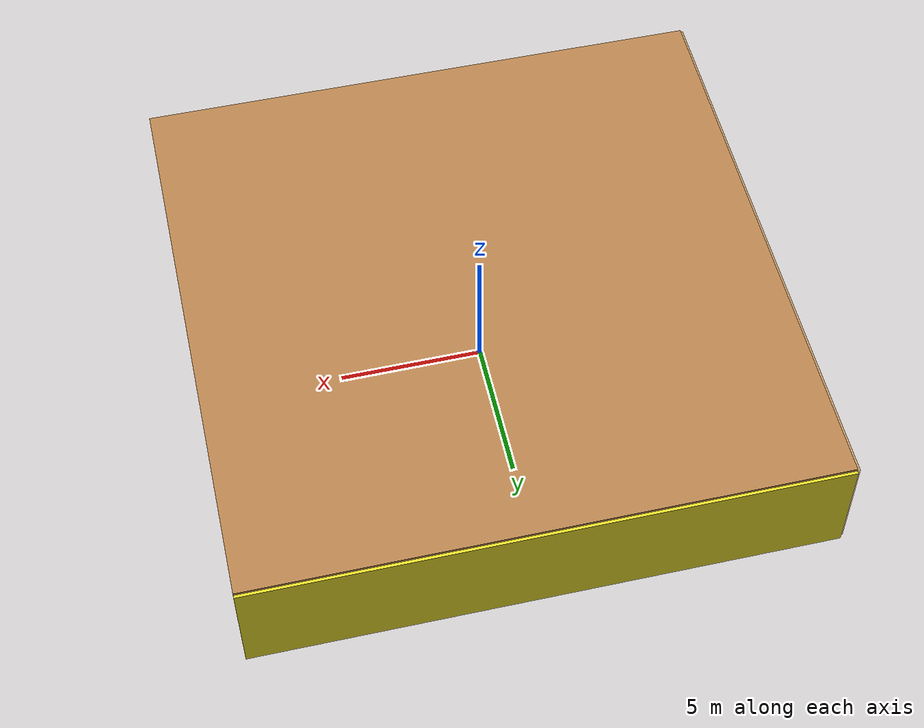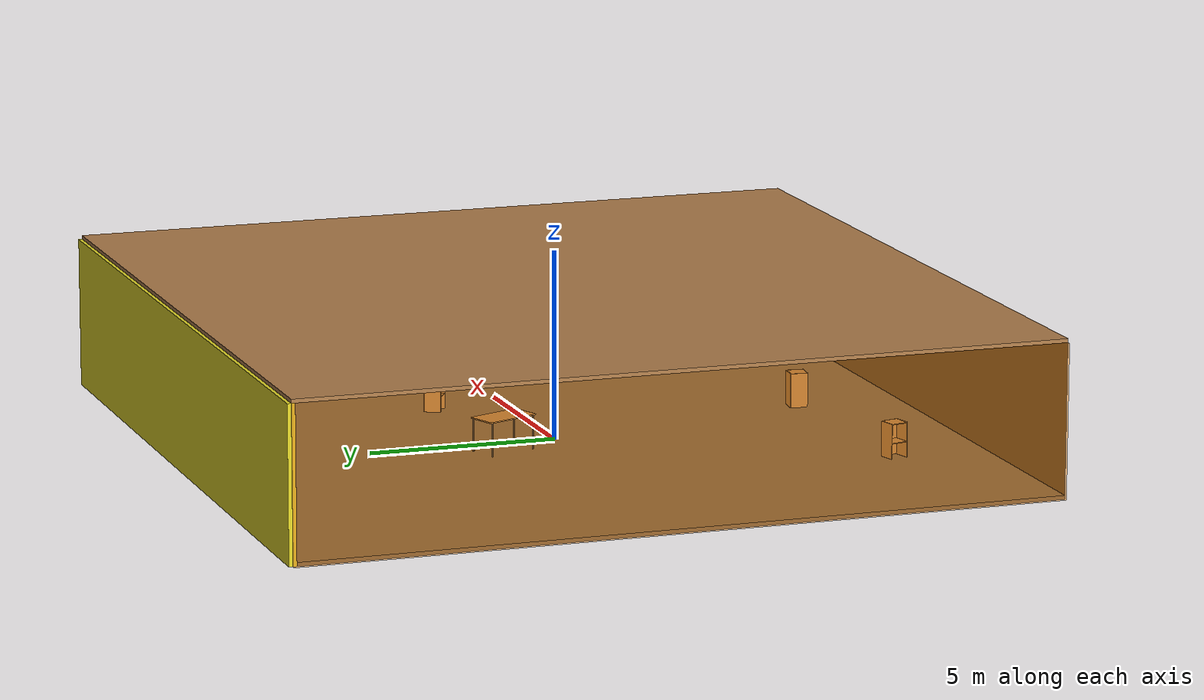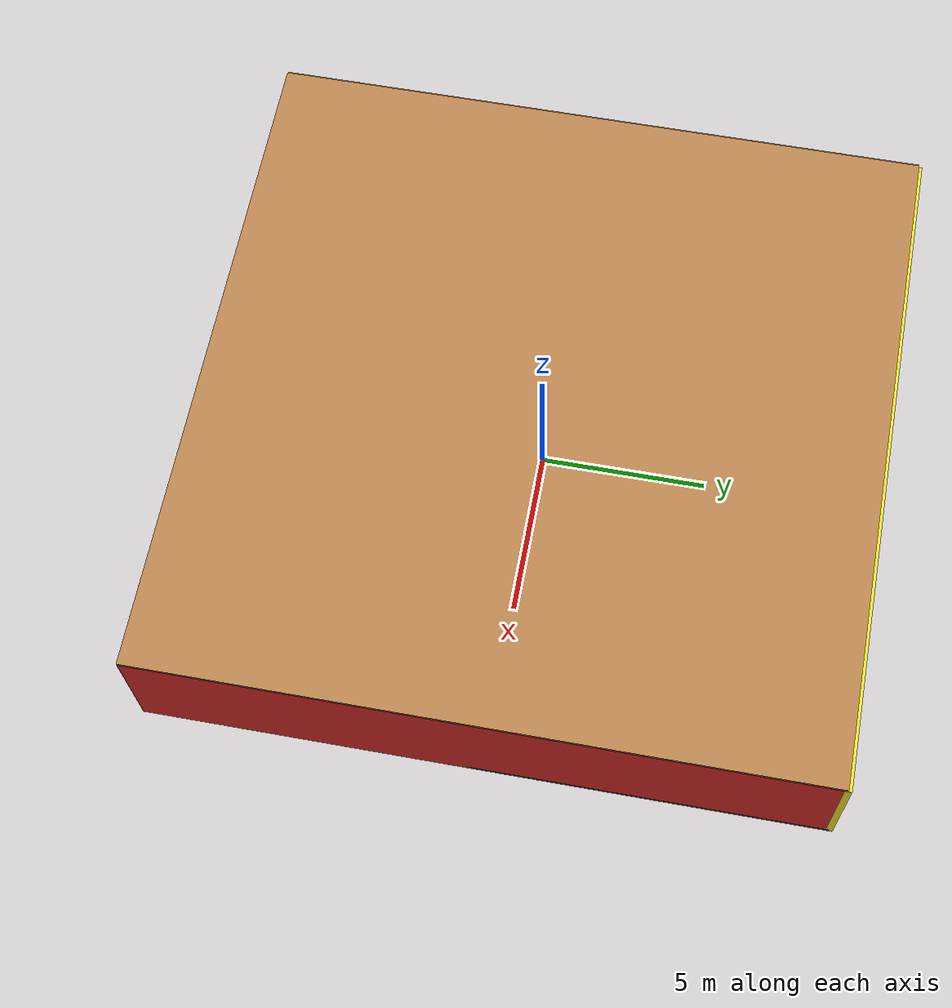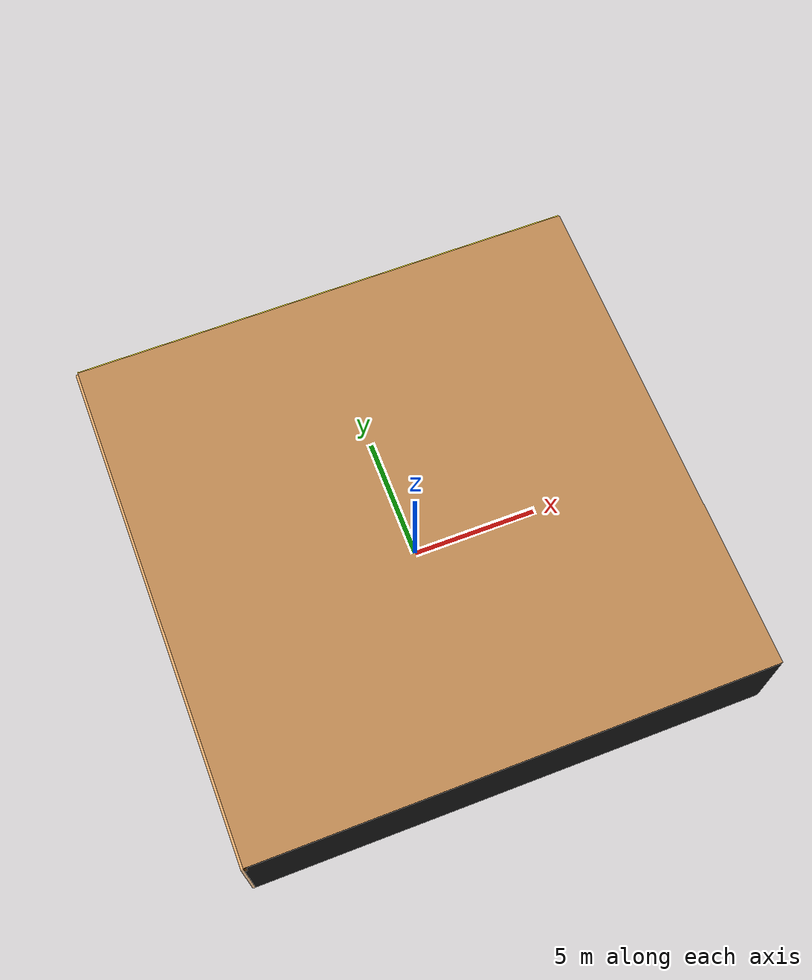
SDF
<sdf version="1.4">
 <world name="default">
  <physics type="ode">
   <max_step_size>0.001</max_step_size>
   <real_time_factor>1</real_time_factor>
   <real_time_update_rate>1000</real_time_update_rate>
   <gravity>0 0 -9.8</gravity>
  </physics>
  <scene><ambient>0.4 0.4 0.4 1</ambient><background>0.7 0.7 0.7 1</background><shadows>1</shadows></scene>
  <model name="Surrounding">
   <static>1</static>
   <link name="Ceiling">
    <collision name="Ceiling_Collision"><geometry><box><size>20 20 0.1</size></box></geometry></collision>
    <visual name="Ceiling_Visual">
     <geometry><box><size>20 20 0.1</size></box></geometry>
     <material>
      <script><uri>file://media/materials/scripts/gazebo.material</uri><name>Gazebo/WoodFloor</name></script>
     </material>
    </visual>
    <pose>0 0 4.05 0 0 0</pose>
   </link>
   <link name="Wall_South">
    <collision name="Wall_South_Collision">
     <geometry><box><size>20 0 4</size></box></geometry>
     <pose>0 0 2 0 -0 0</pose>
    </collision>
    <visual name="Wall_South_Visual">
     <pose>0 0 2 0 -0 0</pose>
     <geometry><box><size>20 0 4</size></box></geometry>
     <material>
      <script><uri>file://media/materials/scripts/gazebo.material</uri><name>Gazebo/FlatBlack</name></script>
     </material>
    </visual>
    <velocity_decay><linear>0</linear><angular>0</angular></velocity_decay>
    <pose>0 -10 0 0 -0 0</pose>
   </link>
   <link name="Wall_East">
    <collision name="Wall_21_Collision">
     <geometry><box><size>20 0 4</size></box></geometry>
     <pose>0 0 2 0 -0 0</pose>
    </collision>
    <visual name="Wall_21_Visual">
     <pose>0 0 2 0 -0 0</pose>
     <geometry><box><size>20 0 4</size></box></geometry>
     <material>
      <script><uri>file://media/materials/scripts/gazebo.material</uri><name>Gazebo/Red</name></script>
     </material>
    </visual>
    <velocity_decay><linear>0</linear><angular>0</angular></velocity_decay>
    <pose>10 0 0 0 -0 1.5708</pose>
   </link>
   <link name="Wall_North">
    <collision name="Wall_22_Collision">
     <geometry><box><size>20 0.2 4</size></box></geometry>
     <pose>0 0 2 0 -0 0</pose>
    </collision>
    <visual name="Wall_22_Visual">
     <pose>0 0 2 0 -0 0</pose>
     <geometry><box><size>20 0.2 4</size></box></geometry>
     <material>
      <script><uri>file://media/materials/scripts/gazebo.material</uri><name>Gazebo/Yellow</name></script>
     </material>
    </visual>
    <velocity_decay><linear>0</linear><angular>0</angular></velocity_decay>
    <pose>0 10 0 0 -0 0</pose>
   </link>
   <link name="Wall_West">
    <collision name="Wall_23_Collision">
     <geometry><box><size>20 0.2 4</size></box></geometry>
     <pose>0 0 2 0 -0 0</pose>
    </collision>
    <visual name="Wall_23_Visual">
     <pose>0 0 2 0 -0 0</pose>
     <geometry><box><size>20 0.2 4</size></box></geometry>
     <material>
      <script>
       <uri>file://media/materials/scripts/gazebo.material</uri>
       <name>Gazebo/OrangeTransparent</name>
      </script>
     </material>
    </visual>
    <velocity_decay><linear>0</linear><angular>0</angular></velocity_decay>
    <pose>-10 0 0 0 0 -1.5708</pose>
   </link>
   <link name="Ground_link">
    <collision name="collision">
     <pose>0 0 .05 0 -0 0</pose>
     <geometry><box><size>20 20 0.1</size></box></geometry>
    </collision>
    <visual name="visual">
     <pose>0 0 .05 0 -0 0</pose>
     <geometry><box><size>20 20 0.1</size></box></geometry>
     <material>
      <script><uri>file://media/materials/scripts/gazebo.material</uri><name>Gazebo/DarkGrey</name></script>
     </material>
    </visual>
   </link>
   <static>1</static>
  </model>
  <spherical_coordinates>
   <surface_model>EARTH_WGS84</surface_model>
   <latitude_deg>0</latitude_deg>
   <longitude_deg>0</longitude_deg>
   <elevation>0</elevation>
   <heading_deg>0</heading_deg>
  </spherical_coordinates>
  <light name="lightball_0" type="diffuse">
   <diffuse>0.8 0.8 0.8 1</diffuse>
   <specular>0.2 0.2 0.2 1</specular>
   <attenuation>
    <range>100</range>
    <constant>0.7</constant>
    <linear>0.01</linear>
    <quadratic>0.001</quadratic>
   </attenuation>
   <direction>-0.5 0.1 -0.9</direction>
   <pose>-0.484837572329 -9.61848812885 2.94163373784 0 0 0</pose>
  </light>
  <light name="lightball_1" type="diffuse">
   <diffuse>0.8 0.8 0.8 1</diffuse>
   <specular>0.2 0.2 0.2 1</specular>
   <attenuation>
    <range>100</range>
    <constant>0.7</constant>
    <linear>0.01</linear>
    <quadratic>0.001</quadratic>
   </attenuation>
   <direction>-0.5 0.1 -0.9</direction>
   <pose>1.28604407101 -3.25636967363 3.43002277272 0 0 0</pose>
  </light>
  <light name="lightball_2" type="diffuse">
   <diffuse>0.8 0.8 0.8 1</diffuse>
   <specular>0.2 0.2 0.2 1</specular>
   <attenuation>
    <range>100</range>
    <constant>0.7</constant>
    <linear>0.01</linear>
    <quadratic>0.001</quadratic>
   </attenuation>
   <direction>-0.5 0.1 -0.9</direction>
   <pose>-9.89797435963 -2.68552816939 1.10365510708 0 0 0</pose>
  </light>
  <light name="lightball_3" type="diffuse">
   <diffuse>0.8 0.8 0.8 1</diffuse>
   <specular>0.2 0.2 0.2 1</specular>
   <attenuation>
    <range>100</range>
    <constant>0.7</constant>
    <linear>0.01</linear>
    <quadratic>0.001</quadratic>
   </attenuation>
   <direction>-0.5 0.1 -0.9</direction>
   <pose>4.73022174647 6.9696191496 3.49206927049 0 0 0</pose>
  </light>
  <light name="lightball_4" type="diffuse">
   <diffuse>0.8 0.8 0.8 1</diffuse>
   <specular>0.2 0.2 0.2 1</specular>
   <attenuation>
    <range>100</range>
    <constant>0.7</constant>
    <linear>0.01</linear>
    <quadratic>0.001</quadratic>
   </attenuation>
   <direction>-0.5 0.1 -0.9</direction>
   <pose>1.19274166244 5.7654908707 3.3892304144 0 0 0</pose>
  </light>
  <light name="lightball_5" type="diffuse">
   <diffuse>0.8 0.8 0.8 1</diffuse>
   <specular>0.2 0.2 0.2 1</specular>
   <attenuation>
    <range>100</range>
    <constant>0.7</constant>
    <linear>0.01</linear>
    <quadratic>0.001</quadratic>
   </attenuation>
   <direction>-0.5 0.1 -0.9</direction>
   <pose>2.91756224999 -2.45185722483 3.18136375135 0 0 0</pose>
  </light>
  <include><uri>model://cabinet</uri><pose>-4.92286616671 -7.48784231137 0 0 0 0.232069000562</pose></include>
  <include><uri>model://table</uri><pose>-1.04781717812 1.74993555741 0 0 0 1.94812492051</pose></include>
  <include><uri>model://cabinet</uri><pose>1.11954762074 -7.16448834296 0 0 0 1.46522686345</pose></include>
  <include><uri>model://cabinet</uri><pose>3.70533189064 2.09435955399 0 0 0 1.03488751764</pose></include>
  <include><uri>model://cabinet</uri><pose>7.4088819542 -7.54292685999 0 0 0 0.699555108837</pose></include>
  <include>
   <uri>model://textured_shapes</uri>
   <pose>7.64727727331 -0.751351117021 0 0 0 1.48238955888</pose>
  </include>
 </world>
</sdf>

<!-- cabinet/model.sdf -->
<sdf version="1.5">
  <model name="cabinet">
    <static>true</static>
    <link name="cabinet_bottom_plate">
      <inertial>
        <pose>0 0 -1 0 0 0</pose>
        <inertia>
          <ixx>2.050000</ixx>
          <ixy>0</ixy>
          <ixz>0</ixz>
          <iyy>2.050000</iyy>
          <iyz>0</iyz>
          <izz>2.050000</izz>
        </inertia>
        <mass>25.000000</mass>
      </inertial>
      <collision name="cabinet_bottom_plate_geom">
        <pose>0 0 0.010000 0 0 0</pose>
        <geometry>
          <box>
            <size>0.450000 0.450000 0.020000</size>
          </box>
        </geometry>
      </collision>
      <visual name="cabinet_bottom_plate_geom_visual">
        <pose>0 0 0.010000 0 0 0</pose>
        <geometry>
          <box>
            <size>0.450000 0.450000 0.020000</size>
          </box>
        </geometry>
        <material>
          <script>
            <uri>model://media/materials/scripts/gazebo.material</uri>
            <name>Gazebo/Wood</name>
          </script>
        </material>
      </visual>
      <collision name="cabinet_bottom_plate_geom_cabinet_back_plate">
        <pose>0.235000 0 0.510000 0 0 0</pose>
        <geometry>
          <box>
            <size>0.020000 0.450000 1.020000</size>
          </box>
        </geometry>
      </collision>
      <visual name="cabinet_bottom_plate_geom_cabinet_back_plate_visual">
        <pose>0.235000 0 0.510000 0 0 0</pose>
        <geometry>
          <box>
            <size>0.020000 0.450000 1.020000</size>
          </box>
        </geometry>
        <material>
          <script>
            <uri>model://media/materials/scripts/gazebo.material</uri>
            <name>Gazebo/Wood</name>
          </script>
        </material>
      </visual>
      <collision name="cabinet_bottom_plate_geom_cabinet_left_plate">
        <pose>0 0.235000 0.510000 0 0 0</pose>
        <geometry>
          <box>
            <size>0.450000 0.020000 1.020000</size>
          </box>
        </geometry>
      </collision>
      <visual name="cabinet_bottom_plate_geom_cabinet_left_plate_visual">
        <pose>0 0.235000 0.510000 0 0 0</pose>
        <geometry>
          <box>
            <size>0.450000 0.020000 1.020000</size>
          </box>
        </geometry>
        <material>
          <script>
            <uri>model://media/materials/scripts/gazebo.material</uri>
            <name>Gazebo/Wood</name>
          </script>
        </material>
      </visual>
      <collision name="cabinet_bottom_plate_geom_cabinet_middle_plate">
        <pose>0 0 0.510000 0 0 0</pose>
        <geometry>
          <box>
            <size>0.450000 0.450000 0.020000</size>
          </box>
        </geometry>
      </collision>
      <visual name="cabinet_bottom_plate_geom_cabinet_middle_plate_visual">
        <pose>0 0 0.510000 0 0 0</pose>
        <geometry>
          <box>
            <size>0.450000 0.450000 0.020000</size>
          </box>
        </geometry>
        <material>
          <script>
            <uri>model://media/materials/scripts/gazebo.material</uri>
            <name>Gazebo/Wood</name>
          </script>
        </material>
      </visual>
      <collision name="cabinet_bottom_plate_geom_cabinet_right_plate">
        <pose>0 -0.235000 0.510000 0 0 0</pose>
        <geometry>
          <box>
            <size>0.450000 0.020000 1.020000</size>
          </box>
        </geometry>
      </collision>
      <visual name="cabinet_bottom_plate_geom_cabinet_right_plate_visual">
        <pose>0 -0.235000 0.510000 0 0 0</pose>
        <geometry>
          <box>
            <size>0.450000 0.020000 1.020000</size>
          </box>
        </geometry>
        <material>
          <script>
            <uri>model://media/materials/scripts/gazebo.material</uri>
            <name>Gazebo/Wood</name>
          </script>
        </material>
      </visual>
      <collision name="cabinet_bottom_plate_geom_cabinet_top_plate">
        <pose>0 0 1.010000 0 0 0</pose>
        <geometry>
          <box>
            <size>0.450000 0.450000 0.020000</size>
          </box>
        </geometry>
      </collision>
      <visual name="cabinet_bottom_plate_geom_cabinet_top_plate_visual">
        <pose>0 0 1.010000 0 0 0</pose>
        <geometry>
          <box>
            <size>0.450000 0.450000 0.020000</size>
          </box>
        </geometry>
        <material>
          <script>
            <uri>model://media/materials/scripts/gazebo.material</uri>
            <name>Gazebo/Wood</name>
          </script>
        </material>
      </visual>
    </link>
  </model>
</sdf>

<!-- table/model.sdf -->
<sdf version="1.5">
  <model name="table">
    <static>true</static>
    <link name="link">
      <collision name="surface">
        <pose>0 0 1.0 0 0 0</pose>
        <geometry>
          <box>
            <size>1.5 0.8 0.03</size>
          </box>
        </geometry>
        <surface>
          <friction>
            <ode>
              <mu>0.6</mu>
              <mu2>0.6</mu2>
            </ode>
          </friction>
        </surface>
      </collision>
      <visual name="visual1">
        <pose>0 0 1.0 0 0 0</pose>
        <geometry>
          <box>
            <size>1.5 0.8 0.03</size>
          </box>
        </geometry>
        <material>
          <script>
            <uri>model://media/materials/scripts/gazebo.material</uri>
            <name>Gazebo/Wood</name>
          </script>
        </material>
      </visual>
      <collision name="front_left_leg">
        <pose>0.68 0.38 0.5 0 0 0</pose>
        <geometry>
          <cylinder>
            <radius>0.02</radius>
            <length>1.0</length>
          </cylinder>
        </geometry>
      </collision>
      <visual name="front_left_leg">
        <pose>0.68 0.38 0.5 0 0 0</pose>
        <geometry>
          <cylinder>
            <radius>0.02</radius>
            <length>1.0</length>
          </cylinder>
        </geometry>
        <material>
          <script>
            <uri>model://media/materials/scripts/gazebo.material</uri>
            <name>Gazebo/Grey</name>
          </script>
        </material>
      </visual>
      <collision name="front_right_leg">
        <pose>0.68 -0.38 0.5 0 0 0</pose>
        <geometry>
          <cylinder>
            <radius>0.02</radius>
            <length>1.0</length>
          </cylinder>
        </geometry>
      </collision>
      <visual name="front_right_leg">
        <pose>0.68 -0.38 0.5 0 0 0</pose>
        <geometry>
          <cylinder>
            <radius>0.02</radius>
            <length>1.0</length>
          </cylinder>
        </geometry>
        <material>
          <script>
            <uri>model://media/materials/scripts/gazebo.material</uri>
            <name>Gazebo/Grey</name>
          </script>
        </material>
      </visual>
      <collision name="back_right_leg">
        <pose>-0.68 -0.38 0.5 0 0 0</pose>
        <geometry>
          <cylinder>
            <radius>0.02</radius>
            <length>1.0</length>
          </cylinder>
        </geometry>
      </collision>
      <visual name="back_right_leg">
        <pose>-0.68 -0.38 0.5 0 0 0</pose>
        <geometry>
          <cylinder>
            <radius>0.02</radius>
            <length>1.0</length>
          </cylinder>
        </geometry>
        <material>
          <script>
            <uri>model://media/materials/scripts/gazebo.material</uri>
            <name>Gazebo/Grey</name>
          </script>
        </material>
      </visual>
      <collision name="back_left_leg">
        <pose>-0.68 0.38 0.5 0 0 0</pose>
        <geometry>
          <cylinder>
            <radius>0.02</radius>
            <length>1.0</length>
          </cylinder>
        </geometry>
      </collision>
      <visual name="back_left_leg">
        <pose>-0.68 0.38 0.5 0 0 0</pose>
        <geometry>
          <cylinder>
            <radius>0.02</radius>
            <length>1.0</length>
          </cylinder>
        </geometry>
        <material>
          <script>
            <uri>model://media/materials/scripts/gazebo.material</uri>
            <name>Gazebo/Grey</name>
          </script>
        </material>
      </visual>
    </link>
  </model>
</sdf>

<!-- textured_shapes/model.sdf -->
<sdf version="1.6">
  <model name="textured_shapes">
    <pose>0 0 0.5 0 0 0</pose>
    <link name="box">
      <pose>0 -1.5 0 0 0 0</pose>
      <collision name="collision">
        <geometry>
          <box>
            <size>1 1 1</size>
          </box>
        </geometry>
      </collision>
      <visual name="visual">
        <geometry>
          <box>
            <size>1 1 1</size>
          </box>
        </geometry>
        <material>
          <script>
            <uri>model://../model_source/models/textured_shapes/materials/scripts</uri>
            <uri>model://../model_source/models/textured_shapes/materials/textures</uri>
            <name>TexturedShape/Squares</name>
          </script>
        </material>
      </visual>
    </link>
    <link name="sphere">
      <collision name="collision">
        <geometry>
          <sphere>
            <radius>0.5</radius>
          </sphere>
        </geometry>
      </collision>
      <visual name="visual">
        <geometry>
          <sphere>
            <radius>0.5</radius>
          </sphere>
        </geometry>
        <material>
          <script>
            <uri>model://../model_source/models/textured_shapes/materials/scripts</uri>
            <uri>model://../model_source/models/textured_shapes/materials/textures</uri>
            <name>TexturedShape/Squares</name>
          </script>
        </material>
      </visual>
    </link>
    <link name="cylinder">
      <pose>0 1.5 0 0 0 0</pose>
      <collision name="collision">
        <geometry>
          <cylinder>
            <radius>0.5</radius>
            <length>1</length>
          </cylinder>
        </geometry>
      </collision>
      <visual name="visual">
        <geometry>
          <cylinder>
            <radius>0.5</radius>
            <length>1</length>
          </cylinder>
        </geometry>
        <material>
          <script>
            <uri>model://../model_source/models/textured_shapes/materials/scripts</uri>
            <uri>model://../model_source/models/textured_shapes/materials/textures</uri>
            <name>TexturedShape/Squares</name>
          </script>
        </material>
      </visual>
    </link>
  </model>
</sdf>
